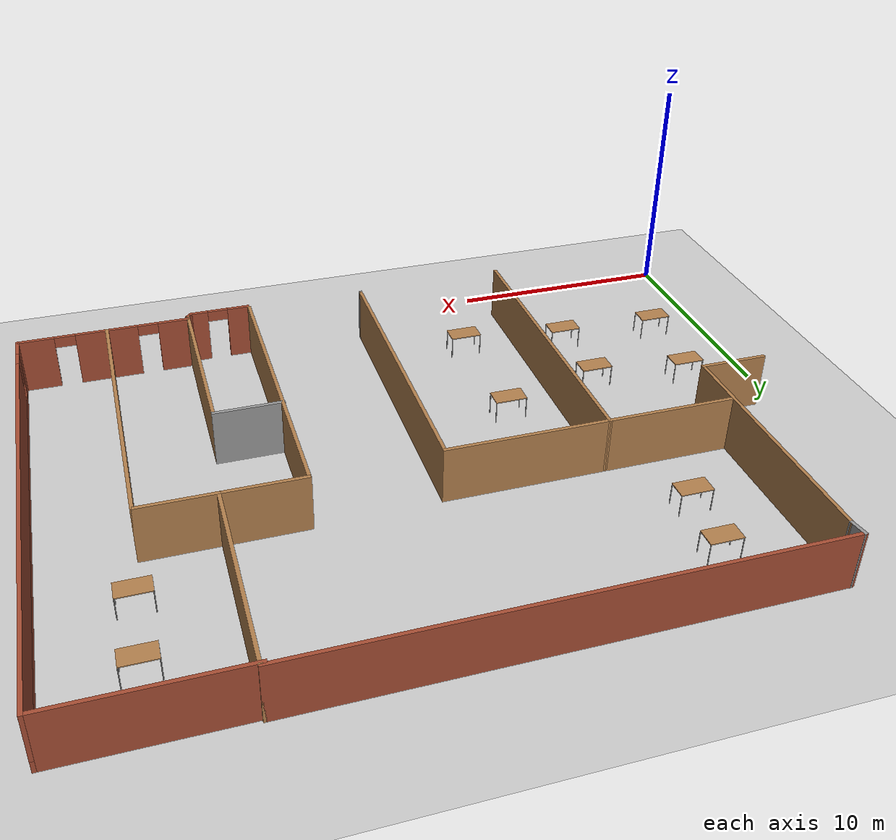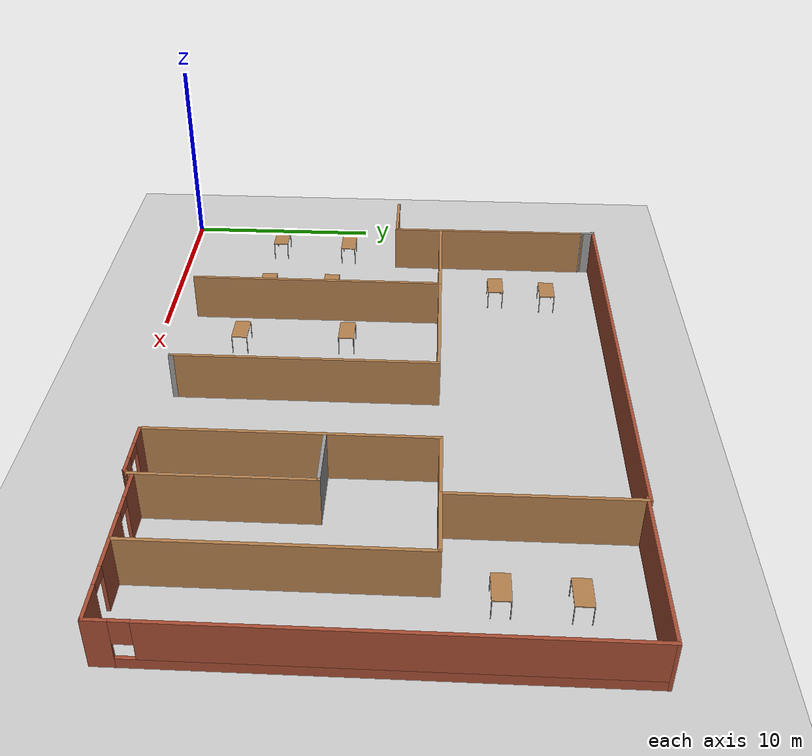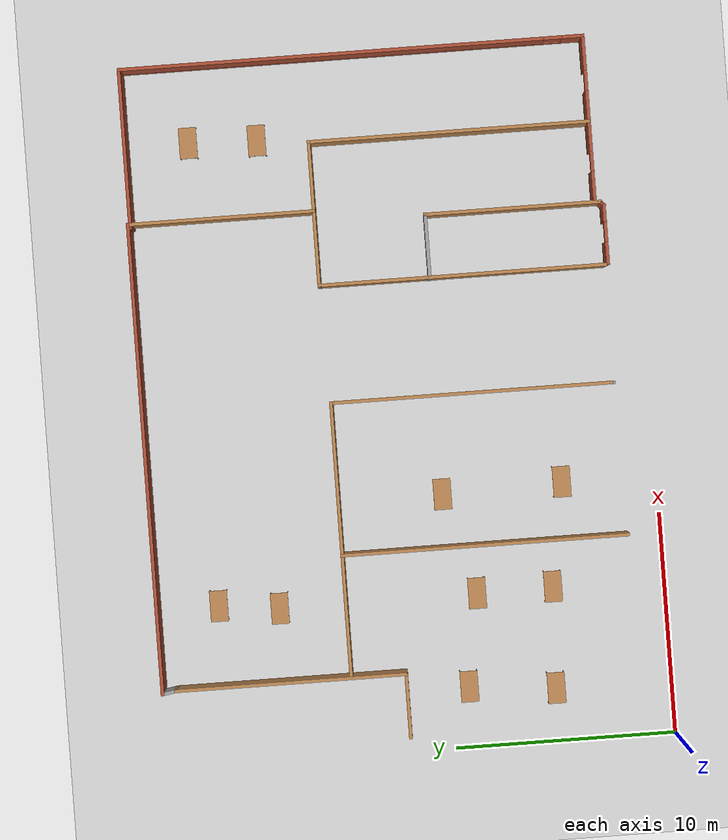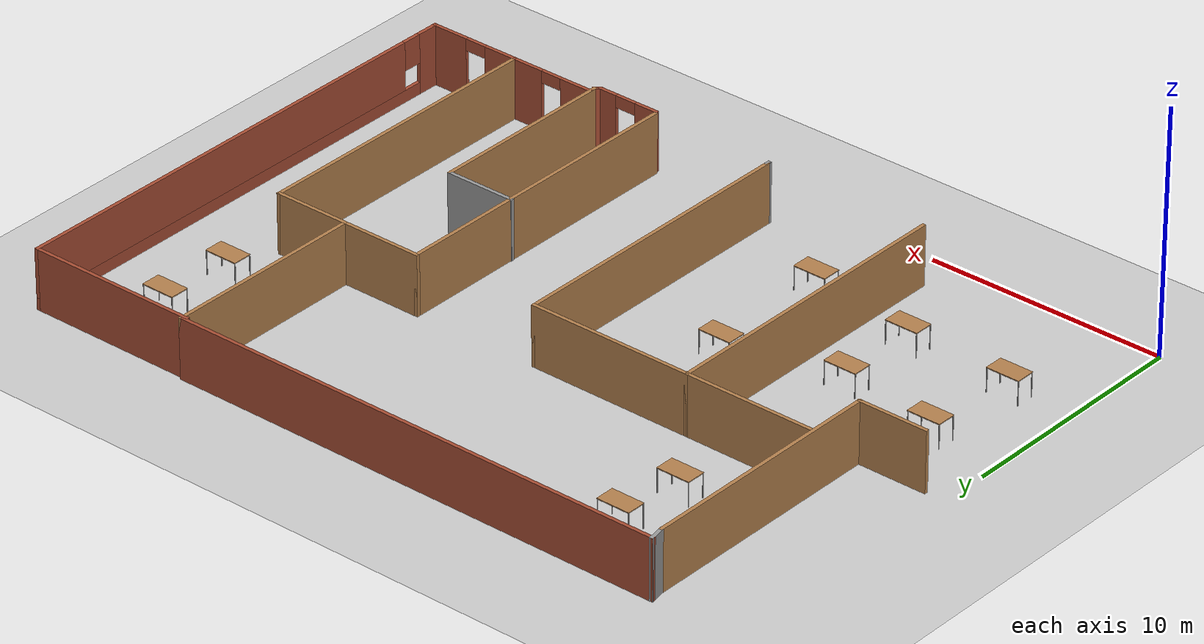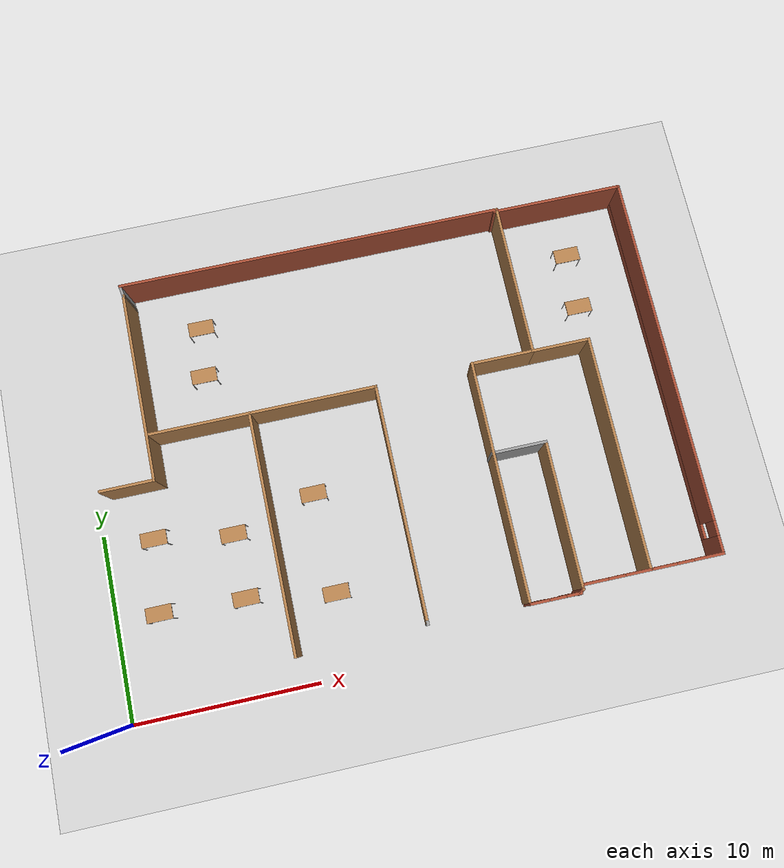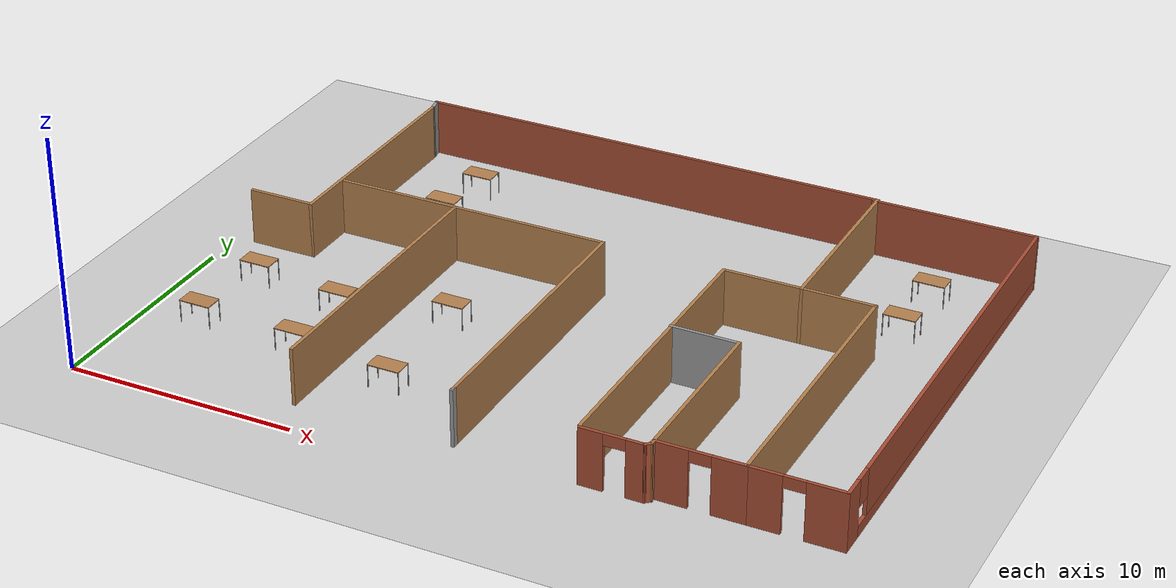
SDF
<sdf version="1.6">
 <world name="default">
  <model name="ground_plane">
   <static>1</static>
   <link name="link">
    <collision name="collision">
     <geometry><plane><normal>0 0 1</normal><size>100 100</size></plane></geometry>
     <surface><friction><ode><mu>100</mu><mu2>50</mu2></ode></friction></surface>
    </collision>
    <visual name="visual">
     <cast_shadows>0</cast_shadows>
     <geometry><plane><normal>0 0 1</normal><size>100 100</size></plane></geometry>
     <material>
      <script><uri>file://media/materials/scripts/gazebo.material</uri><name>Gazebo/Grey</name></script>
     </material>
    </visual>
   </link>
  </model>
  <model name="vital">
   <pose>1.2398 -2.19799 0 0 -0 0</pose>
   <link name="Wall_52">
    <collision name="Wall_52_Collision">
     <geometry><box><size>3 0.15 2.5</size></box></geometry>
     <pose>0 0 1.25 0 -0 0</pose>
    </collision>
    <visual name="Wall_52_Visual">
     <pose>0 0 1.25 0 -0 0</pose>
     <geometry><box><size>3 0.15 2.5</size></box></geometry>
     <material>
      <script><uri>file://media/materials/scripts/gazebo.material</uri><name>Gazebo/Wood</name></script>
      <ambient>1 1 1 1</ambient>
     </material>
    </visual>
    <pose>1.05578 14.218 0 0 -0 0</pose>
   </link>
   <link name="Wall_53">
    <collision name="Wall_53_Collision">
     <geometry><box><size>10.5 0.15 2.5</size></box></geometry>
     <pose>0 0 1.25 0 -0 0</pose>
    </collision>
    <visual name="Wall_53_Visual">
     <pose>0 0 1.25 0 -0 0</pose>
     <geometry><box><size>10.5 0.15 2.5</size></box></geometry>
     <material>
      <script><uri>file://media/materials/scripts/gazebo.material</uri><name>Gazebo/Wood</name></script>
      <ambient>1 1 1 1</ambient>
     </material>
    </visual>
    <pose>2.48078 19.393 0 0 -0 1.5708</pose>
   </link>
   <link name="Wall_62">
    <collision name="Wall_62_Collision">
     <geometry><box><size>0.758276 0.15 2.5</size></box></geometry>
     <pose>0 0 1.25 0 -0 0</pose>
    </collision>
    <visual name="Wall_62_Visual">
     <pose>0 0 1.25 0 -0 0</pose>
     <geometry><box><size>0.758276 0.15 2.5</size></box></geometry>
     <material>
      <script><uri>file://media/materials/scripts/gazebo.material</uri><name>Gazebo/Grey</name></script>
      <ambient>1 1 1 1</ambient>
     </material>
    </visual>
    <pose>2.43078 24.868 0 0 -0 1.73595</pose>
   </link>
   <link name="Wall_65">
    <collision name="Wall_65_Collision">
     <geometry><box><size>13 0.15 2.5</size></box></geometry>
     <pose>0 0 1.25 0 -0 0</pose>
    </collision>
    <visual name="Wall_65_Visual">
     <pose>0 0 1.25 0 -0 0</pose>
     <geometry><box><size>13 0.15 2.5</size></box></geometry>
     <material>
      <script><uri>file://media/materials/scripts/gazebo.material</uri><name>Gazebo/Wood</name></script>
      <ambient>1 1 1 1</ambient>
     </material>
    </visual>
    <pose>7.98601 10.2564 0 0 -0 1.5708</pose>
   </link>
   <link name="Wall_66">
    <collision name="Wall_66_Collision">
     <geometry><box><size>5.5 0.15 2.5</size></box></geometry>
     <pose>0 0 1.25 0 -0 0</pose>
    </collision>
    <visual name="Wall_66_Visual">
     <pose>0 0 1.25 0 -0 0</pose>
     <geometry><box><size>5.5 0.15 2.5</size></box></geometry>
     <material>
      <script><uri>file://media/materials/scripts/gazebo.material</uri><name>Gazebo/Wood</name></script>
      <ambient>1 1 1 1</ambient>
     </material>
    </visual>
    <pose>5.31101 16.6814 0 0 -0 3.14159</pose>
   </link>
   <link name="Wall_68">
    <collision name="Wall_68_Collision">
     <geometry><box><size>7 0.15 2.5</size></box></geometry>
     <pose>0 0 1.25 0 -0 0</pose>
    </collision>
    <visual name="Wall_68_Visual">
     <pose>0 0 1.25 0 -0 0</pose>
     <geometry><box><size>7 0.15 2.5</size></box></geometry>
     <material>
      <script><uri>file://media/materials/scripts/gazebo.material</uri><name>Gazebo/Wood</name></script>
      <ambient>1 1 1 1</ambient>
     </material>
    </visual>
    <pose>11.411 16.6814 0 0 -0 0</pose>
   </link>
   <link name="Wall_69">
    <collision name="Wall_69_Collision">
     <geometry><box><size>12.75 0.15 2.5</size></box></geometry>
     <pose>0 0 1.25 0 -0 0</pose>
    </collision>
    <visual name="Wall_69_Visual">
     <pose>0 0 1.25 0 -0 0</pose>
     <geometry><box><size>12.75 0.15 2.5</size></box></geometry>
     <material>
      <script><uri>file://media/materials/scripts/gazebo.material</uri><name>Gazebo/Wood</name></script>
      <ambient>1 1 1 1</ambient>
     </material>
    </visual>
    <pose>14.836 10.3814 0 0 0 -1.5708</pose>
   </link>
   <link name="Wall_70">
    <collision name="Wall_70_Collision">
     <geometry><box><size>0.25 0.15 2.5</size></box></geometry>
     <pose>0 0 1.25 0 -0 0</pose>
    </collision>
    <visual name="Wall_70_Visual">
     <pose>0 0 1.25 0 -0 0</pose>
     <geometry><box><size>0.25 0.15 2.5</size></box></geometry>
     <material>
      <script><uri>file://media/materials/scripts/gazebo.material</uri><name>Gazebo/Grey</name></script>
      <ambient>1 1 1 1</ambient>
     </material>
    </visual>
    <pose>14.836 4.03144 0 0 0 -1.5708</pose>
   </link>
   <link name="Wall_75">
    <collision name="Wall_75_Collision">
     <geometry><box><size>21.25 0.15 2.5</size></box></geometry>
     <pose>0 0 1.25 0 -0 0</pose>
    </collision>
    <visual name="Wall_75_Visual">
     <pose>0 0 1.25 0 -0 0</pose>
     <geometry><box><size>21.25 0.15 2.5</size></box></geometry>
     <material>
      <script><uri>file://media/materials/scripts/gazebo.material</uri><name>Gazebo/Bricks</name></script>
      <ambient>1 1 1 1</ambient>
     </material>
    </visual>
    <pose>12.9308 25.168 0 0 -0 0</pose>
   </link>
   <link name="Wall_76">
    <collision name="Wall_76_Collision">
     <geometry><box><size>8.5 0.15 2.5</size></box></geometry>
     <pose>0 0 1.25 0 -0 0</pose>
    </collision>
    <visual name="Wall_76_Visual">
     <pose>0 0 1.25 0 -0 0</pose>
     <geometry><box><size>8.5 0.15 2.5</size></box></geometry>
     <material>
      <script><uri>file://media/materials/scripts/gazebo.material</uri><name>Gazebo/Wood</name></script>
      <ambient>1 1 1 1</ambient>
     </material>
    </visual>
    <pose>23.4808 20.993 0 0 0 -1.5708</pose>
   </link>
   <link name="Wall_77">
    <collision name="Wall_77_Collision">
     <geometry><box><size>3.5 0.15 2.5</size></box></geometry>
     <pose>0 0 1.25 0 -0 0</pose>
    </collision>
    <visual name="Wall_77_Visual">
     <pose>0 0 1.25 0 -0 0</pose>
     <geometry><box><size>3.5 0.15 2.5</size></box></geometry>
     <material>
      <script><uri>file://media/materials/scripts/gazebo.material</uri><name>Gazebo/Wood</name></script>
      <ambient>1 1 1 1</ambient>
     </material>
    </visual>
    <pose>21.8058 16.818 0 0 -0 3.14159</pose>
   </link>
   <link name="Wall_78">
    <collision name="Wall_78_Collision">
     <geometry><box><size>13 0.15 2.5</size></box></geometry>
     <pose>0 0 1.25 0 -0 0</pose>
    </collision>
    <visual name="Wall_78_Visual">
     <pose>0 0 1.25 0 -0 0</pose>
     <geometry><box><size>13 0.15 2.5</size></box></geometry>
     <material>
      <script><uri>file://media/materials/scripts/gazebo.material</uri><name>Gazebo/Wood</name></script>
      <ambient>1 1 1 1</ambient>
     </material>
    </visual>
    <pose>20.1308 10.393 0 0 0 -1.5708</pose>
   </link>
   <link name="Wall_83">
    <collision name="Wall_83_Collision">
     <geometry><box><size>3 0.15 2.5</size></box></geometry>
     <pose>0 0 1.25 0 -0 0</pose>
    </collision>
    <visual name="Wall_83_Visual">
     <pose>0 0 1.25 0 -0 0</pose>
     <geometry><box><size>3 0.15 2.5</size></box></geometry>
     <material>
      <script><uri>file://media/materials/scripts/gazebo.material</uri><name>Gazebo/Grey</name></script>
      <ambient>1 1 1 1</ambient>
     </material>
    </visual>
    <pose>21.5302 11.8466 0 0 -0 0</pose>
   </link>
   <link name="Wall_84">
    <collision name="Wall_84_Collision">
     <geometry><box><size>8 0.15 2.5</size></box></geometry>
     <pose>0 0 1.25 0 -0 0</pose>
    </collision>
    <visual name="Wall_84_Visual">
     <pose>0 0 1.25 0 -0 0</pose>
     <geometry><box><size>8 0.15 2.5</size></box></geometry>
     <material>
      <script><uri>file://media/materials/scripts/gazebo.material</uri><name>Gazebo/Wood</name></script>
      <ambient>1 1 1 1</ambient>
     </material>
    </visual>
    <pose>22.9552 7.92155 0 0 0 -1.5708</pose>
   </link>
   <link name="Wall_87">
    <pose>21.486 3.83144 0 0 -0 0</pose>
    <visual name="Wall_87_Visual_0">
     <pose>-0.861452 0 1.25 0 -0 0</pose>
     <geometry><box><size>1.0271 0.15 2.5</size></box></geometry>
     <material>
      <script><uri>file://media/materials/scripts/gazebo.material</uri><name>Gazebo/Bricks</name></script>
      <ambient>1 1 1 1</ambient>
     </material>
    </visual>
    <collision name="Wall_87_Collision_0">
     <geometry><box><size>1.0271 0.15 2.5</size></box></geometry>
     <pose>-0.861452 0 1.25 0 -0 0</pose>
    </collision>
    <visual name="Wall_87_Visual_1">
     <pose>0.963548 0 1.25 0 -0 0</pose>
     <geometry><box><size>0.822903 0.15 2.5</size></box></geometry>
     <material>
      <script><uri>file://media/materials/scripts/gazebo.material</uri><name>Gazebo/Bricks</name></script>
      <ambient>1 1 1 1</ambient>
     </material>
    </visual>
    <collision name="Wall_87_Collision_1">
     <geometry><box><size>0.822903 0.15 2.5</size></box></geometry>
     <pose>0.963548 0 1.25 0 -0 0</pose>
    </collision>
    <visual name="Wall_87_Visual_2">
     <pose>0.102097 0 2.25 0 -0 0</pose>
     <geometry><box><size>0.9 0.15 0.5</size></box></geometry>
     <material>
      <script><uri>file://media/materials/scripts/gazebo.material</uri><name>Gazebo/Bricks</name></script>
      <ambient>1 1 1 1</ambient>
     </material>
    </visual>
    <collision name="Wall_87_Collision_2">
     <geometry><box><size>0.9 0.15 0.5</size></box></geometry>
     <pose>0.102097 0 2.25 0 -0 0</pose>
    </collision>
   </link>
   <link name="Wall_88">
    <collision name="Wall_88_Collision">
     <geometry><box><size>0.38642 0.15 2.5</size></box></geometry>
     <pose>0 0 1.25 0 -0 0</pose>
    </collision>
    <visual name="Wall_88_Visual">
     <pose>0 0 1.25 0 -0 0</pose>
     <geometry><box><size>0.38642 0.15 2.5</size></box></geometry>
     <material>
      <script><uri>file://media/materials/scripts/gazebo.material</uri><name>Gazebo/Bricks</name></script>
      <ambient>1 1 1 1</ambient>
     </material>
    </visual>
    <pose>22.8706 3.914 0 0 -0 0.773112</pose>
   </link>
   <link name="Wall_90">
    <collision name="Wall_90_Collision">
     <geometry><box><size>3.25 0.15 2.5</size></box></geometry>
     <pose>0 0 1.25 0 -0 0</pose>
    </collision>
    <visual name="Wall_90_Visual">
     <pose>0 0 1.25 0 -0 0</pose>
     <geometry><box><size>3.25 0.15 2.5</size></box></geometry>
     <material>
      <script><uri>file://media/materials/scripts/gazebo.material</uri><name>Gazebo/Wood</name></script>
      <ambient>1 1 1 1</ambient>
     </material>
    </visual>
    <pose>25.0308 16.818 0 0 -0 0</pose>
   </link>
   <link name="Wall_91">
    <collision name="Wall_91_Collision">
     <geometry><box><size>12.75 0.15 2.5</size></box></geometry>
     <pose>0 0 1.25 0 -0 0</pose>
    </collision>
    <visual name="Wall_91_Visual">
     <pose>0 0 1.25 0 -0 0</pose>
     <geometry><box><size>12.75 0.15 2.5</size></box></geometry>
     <material>
      <script><uri>file://media/materials/scripts/gazebo.material</uri><name>Gazebo/Wood</name></script>
      <ambient>1 1 1 1</ambient>
     </material>
    </visual>
    <pose>26.5808 10.518 0 0 0 -1.5708</pose>
   </link>
   <link name="Wall_92">
    <pose>24.7808 4.21796 0 0 -0 3.14159</pose>
    <visual name="Wall_92_Visual_0">
     <pose>-1.16589 0 1.25 0 -0 0</pose>
     <geometry><box><size>1.41822 0.15 2.5</size></box></geometry>
     <material>
      <script><uri>file://media/materials/scripts/gazebo.material</uri><name>Gazebo/Bricks</name></script>
      <ambient>1 1 1 1</ambient>
     </material>
    </visual>
    <collision name="Wall_92_Collision_0">
     <geometry><box><size>1.41822 0.15 2.5</size></box></geometry>
     <pose>-1.16589 0 1.25 0 -0 0</pose>
    </collision>
    <visual name="Wall_92_Visual_1">
     <pose>1.15911 0 1.25 0 -0 0</pose>
     <geometry><box><size>1.43178 0.15 2.5</size></box></geometry>
     <material>
      <script><uri>file://media/materials/scripts/gazebo.material</uri><name>Gazebo/Bricks</name></script>
      <ambient>1 1 1 1</ambient>
     </material>
    </visual>
    <collision name="Wall_92_Collision_1">
     <geometry><box><size>1.43178 0.15 2.5</size></box></geometry>
     <pose>1.15911 0 1.25 0 -0 0</pose>
    </collision>
    <visual name="Wall_92_Visual_2">
     <pose>-0.006779 0 2.25 0 -0 0</pose>
     <geometry><box><size>0.9 0.15 0.5</size></box></geometry>
     <material>
      <script><uri>file://media/materials/scripts/gazebo.material</uri><name>Gazebo/Bricks</name></script>
      <ambient>1 1 1 1</ambient>
     </material>
    </visual>
    <collision name="Wall_92_Collision_2">
     <geometry><box><size>0.9 0.15 0.5</size></box></geometry>
     <pose>-0.006779 0 2.25 0 -0 0</pose>
    </collision>
   </link>
   <link name="Wall_94">
    <pose>28.5058 4.21796 0 0 -0 0</pose>
    <visual name="Wall_94_Visual_0">
     <pose>-1.26904 0 1.25 0 -0 0</pose>
     <geometry><box><size>1.46192 0.15 2.5</size></box></geometry>
     <material>
      <script><uri>file://media/materials/scripts/gazebo.material</uri><name>Gazebo/Bricks</name></script>
      <ambient>1 1 1 1</ambient>
     </material>
    </visual>
    <collision name="Wall_94_Collision_0">
     <geometry><box><size>1.46192 0.15 2.5</size></box></geometry>
     <pose>-1.26904 0 1.25 0 -0 0</pose>
    </collision>
    <visual name="Wall_94_Visual_1">
     <pose>1.18096 0 1.25 0 -0 0</pose>
     <geometry><box><size>1.63808 0.15 2.5</size></box></geometry>
     <material>
      <script><uri>file://media/materials/scripts/gazebo.material</uri><name>Gazebo/Bricks</name></script>
      <ambient>1 1 1 1</ambient>
     </material>
    </visual>
    <collision name="Wall_94_Collision_1">
     <geometry><box><size>1.63808 0.15 2.5</size></box></geometry>
     <pose>1.18096 0 1.25 0 -0 0</pose>
    </collision>
    <visual name="Wall_94_Visual_2">
     <pose>-0.088078 0 2.25 0 -0 0</pose>
     <geometry><box><size>0.9 0.15 0.5</size></box></geometry>
     <material>
      <script><uri>file://media/materials/scripts/gazebo.material</uri><name>Gazebo/Bricks</name></script>
      <ambient>1 1 1 1</ambient>
     </material>
    </visual>
    <collision name="Wall_94_Collision_2">
     <geometry><box><size>0.9 0.15 0.5</size></box></geometry>
     <pose>-0.088078 0 2.25 0 -0 0</pose>
    </collision>
   </link>
   <link name="Wall_95">
    <pose>30.4308 14.643 0 0 -0 1.5708</pose>
    <visual name="Wall_95_Visual_0">
     <pose>-9.99323 0 1.25 0 -0 0</pose>
     <geometry><box><size>1.01353 0.15 2.5</size></box></geometry>
     <material>
      <script><uri>file://media/materials/scripts/gazebo.material</uri><name>Gazebo/Bricks</name></script>
      <ambient>1 1 1 1</ambient>
     </material>
    </visual>
    <collision name="Wall_95_Collision_0">
     <geometry><box><size>1.01353 0.15 2.5</size></box></geometry>
     <pose>-9.99323 0 1.25 0 -0 0</pose>
    </collision>
    <visual name="Wall_95_Visual_1">
     <pose>0.506766 0 0.25 0 -0 0</pose>
     <geometry><box><size>19.9865 0.15 0.5</size></box></geometry>
     <material>
      <script><uri>file://media/materials/scripts/gazebo.material</uri><name>Gazebo/Bricks</name></script>
      <ambient>1 1 1 1</ambient>
     </material>
    </visual>
    <collision name="Wall_95_Collision_1">
     <geometry><box><size>19.9865 0.15 0.5</size></box></geometry>
     <pose>0.506766 0 0.25 0 -0 0</pose>
    </collision>
    <visual name="Wall_95_Visual_2">
     <pose>0.906766 0 1.5 0 -0 0</pose>
     <geometry><box><size>19.1865 0.15 2</size></box></geometry>
     <material>
      <script><uri>file://media/materials/scripts/gazebo.material</uri><name>Gazebo/Bricks</name></script>
      <ambient>1 1 1 1</ambient>
     </material>
    </visual>
    <collision name="Wall_95_Collision_2">
     <geometry><box><size>19.1865 0.15 2</size></box></geometry>
     <pose>0.906766 0 1.5 0 -0 0</pose>
    </collision>
    <visual name="Wall_95_Visual_3">
     <pose>-9.08647 0 1.9 0 -0 0</pose>
     <geometry><box><size>0.8 0.15 1.2</size></box></geometry>
     <material>
      <script><uri>file://media/materials/scripts/gazebo.material</uri><name>Gazebo/Bricks</name></script>
      <ambient>1 1 1 1</ambient>
     </material>
    </visual>
    <collision name="Wall_95_Collision_3">
     <geometry><box><size>0.8 0.15 1.2</size></box></geometry>
     <pose>-9.08647 0 1.9 0 -0 0</pose>
    </collision>
   </link>
   <link name="Wall_96">
    <collision name="Wall_96_Collision">
     <geometry><box><size>7.25 0.15 2.5</size></box></geometry>
     <pose>0 0 1.25 0 -0 0</pose>
    </collision>
    <visual name="Wall_96_Visual">
     <pose>0 0 1.25 0 -0 0</pose>
     <geometry><box><size>7.25 0.15 2.5</size></box></geometry>
     <material>
      <script><uri>file://media/materials/scripts/gazebo.material</uri><name>Gazebo/Bricks</name></script>
      <ambient>1 1 1 1</ambient>
     </material>
    </visual>
    <pose>26.8808 25.068 0 0 -0 3.14159</pose>
   </link>
   <static>1</static>
  </model>
  <model name="table_5">
   <static>0</static>
   <link name="link">
    <collision name="surface">
     <pose>0 0 1 0 -0 0</pose>
     <geometry><box><size>1.5 0.8 0.03</size></box></geometry>
     <surface><friction><ode><mu>0.6</mu><mu2>0.6</mu2></ode></friction></surface>
    </collision>
    <visual name="visual1">
     <pose>0 0 1 0 -0 0</pose>
     <geometry><box><size>1.4 0.8 0.04</size></box></geometry>
     <material>
      <script><uri>file://media/materials/scripts/gazebo.material</uri><name>Gazebo/Wood</name></script>
     </material>
    </visual>
    <collision name="front_left_leg">
     <pose>0.68 0.38 0.5 0 -0 0</pose>
     <geometry><cylinder><radius>0.02</radius><length>1</length></cylinder></geometry>
    </collision>
    <visual name="front_left_leg">
     <pose>0.68 0.38 0.5 0 -0 0</pose>
     <geometry><cylinder><radius>0.02</radius><length>1</length></cylinder></geometry>
     <material>
      <script><uri>file://media/materials/scripts/gazebo.material</uri><name>Gazebo/Grey</name></script>
     </material>
    </visual>
    <collision name="front_right_leg">
     <pose>0.68 -0.38 0.5 0 -0 0</pose>
     <geometry><cylinder><radius>0.02</radius><length>1</length></cylinder></geometry>
    </collision>
    <visual name="front_right_leg">
     <pose>0.68 -0.38 0.5 0 -0 0</pose>
     <geometry><cylinder><radius>0.02</radius><length>1</length></cylinder></geometry>
     <material>
      <script><uri>file://media/materials/scripts/gazebo.material</uri><name>Gazebo/Grey</name></script>
     </material>
    </visual>
    <collision name="back_right_leg">
     <pose>-0.68 -0.38 0.5 0 -0 0</pose>
     <geometry><cylinder><radius>0.02</radius><length>1</length></cylinder></geometry>
    </collision>
    <visual name="back_right_leg">
     <pose>-0.68 -0.38 0.5 0 -0 0</pose>
     <geometry><cylinder><radius>0.02</radius><length>1</length></cylinder></geometry>
     <material>
      <script><uri>file://media/materials/scripts/gazebo.material</uri><name>Gazebo/Grey</name></script>
     </material>
    </visual>
    <collision name="back_left_leg">
     <pose>-0.68 0.38 0.5 0 -0 0</pose>
     <geometry><cylinder><radius>0.02</radius><length>1</length></cylinder></geometry>
    </collision>
    <visual name="back_left_leg">
     <pose>-0.68 0.38 0.5 0 -0 0</pose>
     <geometry><cylinder><radius>0.02</radius><length>1</length></cylinder></geometry>
     <material>
      <script><uri>file://media/materials/scripts/gazebo.material</uri><name>Gazebo/Grey</name></script>
     </material>
    </visual>
    <inertial>
     <inertia><ixx>1</ixx><ixy>0</ixy><ixz>0</ixz><iyy>1</iyy><iyz>0</iyz><izz>1</izz></inertia>
     <mass>1</mass>
    </inertial>
   </link>
   <pose>2.49857 5.30082 -1e-06 1e-06 -0 0</pose>
  </model>
  <model name="table_6">
   <static>0</static>
   <link name="link">
    <collision name="surface">
     <pose>0 0 1 0 -0 0</pose>
     <geometry><box><size>1.5 0.8 0.03</size></box></geometry>
     <surface><friction><ode><mu>0.6</mu><mu2>0.6</mu2></ode></friction></surface>
    </collision>
    <visual name="visual1">
     <pose>0 0 1 0 -0 0</pose>
     <geometry><box><size>1.4 0.8 0.04</size></box></geometry>
     <material>
      <script><uri>file://media/materials/scripts/gazebo.material</uri><name>Gazebo/Wood</name></script>
     </material>
    </visual>
    <collision name="front_left_leg">
     <pose>0.68 0.38 0.5 0 -0 0</pose>
     <geometry><cylinder><radius>0.02</radius><length>1</length></cylinder></geometry>
    </collision>
    <visual name="front_left_leg">
     <pose>0.68 0.38 0.5 0 -0 0</pose>
     <geometry><cylinder><radius>0.02</radius><length>1</length></cylinder></geometry>
     <material>
      <script><uri>file://media/materials/scripts/gazebo.material</uri><name>Gazebo/Grey</name></script>
     </material>
    </visual>
    <collision name="front_right_leg">
     <pose>0.68 -0.38 0.5 0 -0 0</pose>
     <geometry><cylinder><radius>0.02</radius><length>1</length></cylinder></geometry>
    </collision>
    <visual name="front_right_leg">
     <pose>0.68 -0.38 0.5 0 -0 0</pose>
     <geometry><cylinder><radius>0.02</radius><length>1</length></cylinder></geometry>
     <material>
      <script><uri>file://media/materials/scripts/gazebo.material</uri><name>Gazebo/Grey</name></script>
     </material>
    </visual>
    <collision name="back_right_leg">
     <pose>-0.68 -0.38 0.5 0 -0 0</pose>
     <geometry><cylinder><radius>0.02</radius><length>1</length></cylinder></geometry>
    </collision>
    <visual name="back_right_leg">
     <pose>-0.68 -0.38 0.5 0 -0 0</pose>
     <geometry><cylinder><radius>0.02</radius><length>1</length></cylinder></geometry>
     <material>
      <script><uri>file://media/materials/scripts/gazebo.material</uri><name>Gazebo/Grey</name></script>
     </material>
    </visual>
    <collision name="back_left_leg">
     <pose>-0.68 0.38 0.5 0 -0 0</pose>
     <geometry><cylinder><radius>0.02</radius><length>1</length></cylinder></geometry>
    </collision>
    <visual name="back_left_leg">
     <pose>-0.68 0.38 0.5 0 -0 0</pose>
     <geometry><cylinder><radius>0.02</radius><length>1</length></cylinder></geometry>
     <material>
      <script><uri>file://media/materials/scripts/gazebo.material</uri><name>Gazebo/Grey</name></script>
     </material>
    </visual>
    <inertial>
     <inertia><ixx>1</ixx><ixy>0</ixy><ixz>0</ixz><iyy>1</iyy><iyz>0</iyz><izz>1</izz></inertia>
     <mass>1</mass>
    </inertial>
   </link>
   <pose>2.84704 9.21703 -1e-06 1e-06 -0 0</pose>
  </model>
  <model name="table_7">
   <static>0</static>
   <link name="link">
    <collision name="surface">
     <pose>0 0 1 0 -0 0</pose>
     <geometry><box><size>1.5 0.8 0.03</size></box></geometry>
     <surface><friction><ode><mu>0.6</mu><mu2>0.6</mu2></ode></friction></surface>
    </collision>
    <visual name="visual1">
     <pose>0 0 1 0 -0 0</pose>
     <geometry><box><size>1.4 0.8 0.04</size></box></geometry>
     <material>
      <script><uri>file://media/materials/scripts/gazebo.material</uri><name>Gazebo/Wood</name></script>
     </material>
    </visual>
    <collision name="front_left_leg">
     <pose>0.68 0.38 0.5 0 -0 0</pose>
     <geometry><cylinder><radius>0.02</radius><length>1</length></cylinder></geometry>
    </collision>
    <visual name="front_left_leg">
     <pose>0.68 0.38 0.5 0 -0 0</pose>
     <geometry><cylinder><radius>0.02</radius><length>1</length></cylinder></geometry>
     <material>
      <script><uri>file://media/materials/scripts/gazebo.material</uri><name>Gazebo/Grey</name></script>
     </material>
    </visual>
    <collision name="front_right_leg">
     <pose>0.68 -0.38 0.5 0 -0 0</pose>
     <geometry><cylinder><radius>0.02</radius><length>1</length></cylinder></geometry>
    </collision>
    <visual name="front_right_leg">
     <pose>0.68 -0.38 0.5 0 -0 0</pose>
     <geometry><cylinder><radius>0.02</radius><length>1</length></cylinder></geometry>
     <material>
      <script><uri>file://media/materials/scripts/gazebo.material</uri><name>Gazebo/Grey</name></script>
     </material>
    </visual>
    <collision name="back_right_leg">
     <pose>-0.68 -0.38 0.5 0 -0 0</pose>
     <geometry><cylinder><radius>0.02</radius><length>1</length></cylinder></geometry>
    </collision>
    <visual name="back_right_leg">
     <pose>-0.68 -0.38 0.5 0 -0 0</pose>
     <geometry><cylinder><radius>0.02</radius><length>1</length></cylinder></geometry>
     <material>
      <script><uri>file://media/materials/scripts/gazebo.material</uri><name>Gazebo/Grey</name></script>
     </material>
    </visual>
    <collision name="back_left_leg">
     <pose>-0.68 0.38 0.5 0 -0 0</pose>
     <geometry><cylinder><radius>0.02</radius><length>1</length></cylinder></geometry>
    </collision>
    <visual name="back_left_leg">
     <pose>-0.68 0.38 0.5 0 -0 0</pose>
     <geometry><cylinder><radius>0.02</radius><length>1</length></cylinder></geometry>
     <material>
      <script><uri>file://media/materials/scripts/gazebo.material</uri><name>Gazebo/Grey</name></script>
     </material>
    </visual>
    <inertial>
     <inertia><ixx>1</ixx><ixy>0</ixy><ixz>0</ixz><iyy>1</iyy><iyz>0</iyz><izz>1</izz></inertia>
     <mass>1</mass>
    </inertial>
   </link>
   <pose>7.07808 5.12069 -8e-06 2e-06 1e-06 0</pose>
  </model>
  <model name="table_8">
   <static>0</static>
   <link name="link">
    <collision name="surface">
     <pose>0 0 1 0 -0 0</pose>
     <geometry><box><size>1.5 0.8 0.03</size></box></geometry>
     <surface><friction><ode><mu>0.6</mu><mu2>0.6</mu2></ode></friction></surface>
    </collision>
    <visual name="visual1">
     <pose>0 0 1 0 -0 0</pose>
     <geometry><box><size>1.4 0.8 0.04</size></box></geometry>
     <material>
      <script><uri>file://media/materials/scripts/gazebo.material</uri><name>Gazebo/Wood</name></script>
     </material>
    </visual>
    <collision name="front_left_leg">
     <pose>0.68 0.38 0.5 0 -0 0</pose>
     <geometry><cylinder><radius>0.02</radius><length>1</length></cylinder></geometry>
    </collision>
    <visual name="front_left_leg">
     <pose>0.68 0.38 0.5 0 -0 0</pose>
     <geometry><cylinder><radius>0.02</radius><length>1</length></cylinder></geometry>
     <material>
      <script><uri>file://media/materials/scripts/gazebo.material</uri><name>Gazebo/Grey</name></script>
     </material>
    </visual>
    <collision name="front_right_leg">
     <pose>0.68 -0.38 0.5 0 -0 0</pose>
     <geometry><cylinder><radius>0.02</radius><length>1</length></cylinder></geometry>
    </collision>
    <visual name="front_right_leg">
     <pose>0.68 -0.38 0.5 0 -0 0</pose>
     <geometry><cylinder><radius>0.02</radius><length>1</length></cylinder></geometry>
     <material>
      <script><uri>file://media/materials/scripts/gazebo.material</uri><name>Gazebo/Grey</name></script>
     </material>
    </visual>
    <collision name="back_right_leg">
     <pose>-0.68 -0.38 0.5 0 -0 0</pose>
     <geometry><cylinder><radius>0.02</radius><length>1</length></cylinder></geometry>
    </collision>
    <visual name="back_right_leg">
     <pose>-0.68 -0.38 0.5 0 -0 0</pose>
     <geometry><cylinder><radius>0.02</radius><length>1</length></cylinder></geometry>
     <material>
      <script><uri>file://media/materials/scripts/gazebo.material</uri><name>Gazebo/Grey</name></script>
     </material>
    </visual>
    <collision name="back_left_leg">
     <pose>-0.68 0.38 0.5 0 -0 0</pose>
     <geometry><cylinder><radius>0.02</radius><length>1</length></cylinder></geometry>
    </collision>
    <visual name="back_left_leg">
     <pose>-0.68 0.38 0.5 0 -0 0</pose>
     <geometry><cylinder><radius>0.02</radius><length>1</length></cylinder></geometry>
     <material>
      <script><uri>file://media/materials/scripts/gazebo.material</uri><name>Gazebo/Grey</name></script>
     </material>
    </visual>
    <inertial>
     <inertia><ixx>1</ixx><ixy>0</ixy><ixz>0</ixz><iyy>1</iyy><iyz>0</iyz><izz>1</izz></inertia>
     <mass>1</mass>
    </inertial>
   </link>
   <pose>7.02876 8.55938 -1e-06 1e-06 -0 0</pose>
  </model>
  <model name="table_9">
   <static>0</static>
   <link name="link">
    <collision name="surface">
     <pose>0 0 1 0 -0 0</pose>
     <geometry><box><size>1.5 0.8 0.03</size></box></geometry>
     <surface><friction><ode><mu>0.6</mu><mu2>0.6</mu2></ode></friction></surface>
    </collision>
    <visual name="visual1">
     <pose>0 0 1 0 -0 0</pose>
     <geometry><box><size>1.4 0.8 0.04</size></box></geometry>
     <material>
      <script><uri>file://media/materials/scripts/gazebo.material</uri><name>Gazebo/Wood</name></script>
     </material>
    </visual>
    <collision name="front_left_leg">
     <pose>0.68 0.38 0.5 0 -0 0</pose>
     <geometry><cylinder><radius>0.02</radius><length>1</length></cylinder></geometry>
    </collision>
    <visual name="front_left_leg">
     <pose>0.68 0.38 0.5 0 -0 0</pose>
     <geometry><cylinder><radius>0.02</radius><length>1</length></cylinder></geometry>
     <material>
      <script><uri>file://media/materials/scripts/gazebo.material</uri><name>Gazebo/Grey</name></script>
     </material>
    </visual>
    <collision name="front_right_leg">
     <pose>0.68 -0.38 0.5 0 -0 0</pose>
     <geometry><cylinder><radius>0.02</radius><length>1</length></cylinder></geometry>
    </collision>
    <visual name="front_right_leg">
     <pose>0.68 -0.38 0.5 0 -0 0</pose>
     <geometry><cylinder><radius>0.02</radius><length>1</length></cylinder></geometry>
     <material>
      <script><uri>file://media/materials/scripts/gazebo.material</uri><name>Gazebo/Grey</name></script>
     </material>
    </visual>
    <collision name="back_right_leg">
     <pose>-0.68 -0.38 0.5 0 -0 0</pose>
     <geometry><cylinder><radius>0.02</radius><length>1</length></cylinder></geometry>
    </collision>
    <visual name="back_right_leg">
     <pose>-0.68 -0.38 0.5 0 -0 0</pose>
     <geometry><cylinder><radius>0.02</radius><length>1</length></cylinder></geometry>
     <material>
      <script><uri>file://media/materials/scripts/gazebo.material</uri><name>Gazebo/Grey</name></script>
     </material>
    </visual>
    <collision name="back_left_leg">
     <pose>-0.68 0.38 0.5 0 -0 0</pose>
     <geometry><cylinder><radius>0.02</radius><length>1</length></cylinder></geometry>
    </collision>
    <visual name="back_left_leg">
     <pose>-0.68 0.38 0.5 0 -0 0</pose>
     <geometry><cylinder><radius>0.02</radius><length>1</length></cylinder></geometry>
     <material>
      <script><uri>file://media/materials/scripts/gazebo.material</uri><name>Gazebo/Grey</name></script>
     </material>
    </visual>
    <inertial>
     <inertia><ixx>1</ixx><ixy>0</ixy><ixz>0</ixz><iyy>1</iyy><iyz>0</iyz><izz>1</izz></inertia>
     <mass>1</mass>
    </inertial>
   </link>
   <pose>11.7706 4.38058 -1e-06 1e-06 -0 0</pose>
  </model>
  <model name="table_10">
   <static>0</static>
   <link name="link">
    <collision name="surface">
     <pose>0 0 1 0 -0 0</pose>
     <geometry><box><size>1.5 0.8 0.03</size></box></geometry>
     <surface><friction><ode><mu>0.6</mu><mu2>0.6</mu2></ode></friction></surface>
    </collision>
    <visual name="visual1">
     <pose>0 0 1 0 -0 0</pose>
     <geometry><box><size>1.4 0.8 0.04</size></box></geometry>
     <material>
      <script><uri>file://media/materials/scripts/gazebo.material</uri><name>Gazebo/Wood</name></script>
     </material>
    </visual>
    <collision name="front_left_leg">
     <pose>0.68 0.38 0.5 0 -0 0</pose>
     <geometry><cylinder><radius>0.02</radius><length>1</length></cylinder></geometry>
    </collision>
    <visual name="front_left_leg">
     <pose>0.68 0.38 0.5 0 -0 0</pose>
     <geometry><cylinder><radius>0.02</radius><length>1</length></cylinder></geometry>
     <material>
      <script><uri>file://media/materials/scripts/gazebo.material</uri><name>Gazebo/Grey</name></script>
     </material>
    </visual>
    <collision name="front_right_leg">
     <pose>0.68 -0.38 0.5 0 -0 0</pose>
     <geometry><cylinder><radius>0.02</radius><length>1</length></cylinder></geometry>
    </collision>
    <visual name="front_right_leg">
     <pose>0.68 -0.38 0.5 0 -0 0</pose>
     <geometry><cylinder><radius>0.02</radius><length>1</length></cylinder></geometry>
     <material>
      <script><uri>file://media/materials/scripts/gazebo.material</uri><name>Gazebo/Grey</name></script>
     </material>
    </visual>
    <collision name="back_right_leg">
     <pose>-0.68 -0.38 0.5 0 -0 0</pose>
     <geometry><cylinder><radius>0.02</radius><length>1</length></cylinder></geometry>
    </collision>
    <visual name="back_right_leg">
     <pose>-0.68 -0.38 0.5 0 -0 0</pose>
     <geometry><cylinder><radius>0.02</radius><length>1</length></cylinder></geometry>
     <material>
      <script><uri>file://media/materials/scripts/gazebo.material</uri><name>Gazebo/Grey</name></script>
     </material>
    </visual>
    <collision name="back_left_leg">
     <pose>-0.68 0.38 0.5 0 -0 0</pose>
     <geometry><cylinder><radius>0.02</radius><length>1</length></cylinder></geometry>
    </collision>
    <visual name="back_left_leg">
     <pose>-0.68 0.38 0.5 0 -0 0</pose>
     <geometry><cylinder><radius>0.02</radius><length>1</length></cylinder></geometry>
     <material>
      <script><uri>file://media/materials/scripts/gazebo.material</uri><name>Gazebo/Grey</name></script>
     </material>
    </visual>
    <inertial>
     <inertia><ixx>1</ixx><ixy>0</ixy><ixz>0</ixz><iyy>1</iyy><iyz>0</iyz><izz>1</izz></inertia>
     <mass>1</mass>
    </inertial>
   </link>
   <pose>11.6041 9.7933 -9e-06 -1e-06 0 0</pose>
  </model>
  <model name="table_11">
   <static>0</static>
   <link name="link">
    <collision name="surface">
     <pose>0 0 1 0 -0 0</pose>
     <geometry><box><size>1.5 0.8 0.03</size></box></geometry>
     <surface><friction><ode><mu>0.6</mu><mu2>0.6</mu2></ode></friction></surface>
    </collision>
    <visual name="visual1">
     <pose>0 0 1 0 -0 0</pose>
     <geometry><box><size>1.4 0.8 0.04</size></box></geometry>
     <material>
      <script><uri>file://media/materials/scripts/gazebo.material</uri><name>Gazebo/Wood</name></script>
     </material>
    </visual>
    <collision name="front_left_leg">
     <pose>0.68 0.38 0.5 0 -0 0</pose>
     <geometry><cylinder><radius>0.02</radius><length>1</length></cylinder></geometry>
    </collision>
    <visual name="front_left_leg">
     <pose>0.68 0.38 0.5 0 -0 0</pose>
     <geometry><cylinder><radius>0.02</radius><length>1</length></cylinder></geometry>
     <material>
      <script><uri>file://media/materials/scripts/gazebo.material</uri><name>Gazebo/Grey</name></script>
     </material>
    </visual>
    <collision name="front_right_leg">
     <pose>0.68 -0.38 0.5 0 -0 0</pose>
     <geometry><cylinder><radius>0.02</radius><length>1</length></cylinder></geometry>
    </collision>
    <visual name="front_right_leg">
     <pose>0.68 -0.38 0.5 0 -0 0</pose>
     <geometry><cylinder><radius>0.02</radius><length>1</length></cylinder></geometry>
     <material>
      <script><uri>file://media/materials/scripts/gazebo.material</uri><name>Gazebo/Grey</name></script>
     </material>
    </visual>
    <collision name="back_right_leg">
     <pose>-0.68 -0.38 0.5 0 -0 0</pose>
     <geometry><cylinder><radius>0.02</radius><length>1</length></cylinder></geometry>
    </collision>
    <visual name="back_right_leg">
     <pose>-0.68 -0.38 0.5 0 -0 0</pose>
     <geometry><cylinder><radius>0.02</radius><length>1</length></cylinder></geometry>
     <material>
      <script><uri>file://media/materials/scripts/gazebo.material</uri><name>Gazebo/Grey</name></script>
     </material>
    </visual>
    <collision name="back_left_leg">
     <pose>-0.68 0.38 0.5 0 -0 0</pose>
     <geometry><cylinder><radius>0.02</radius><length>1</length></cylinder></geometry>
    </collision>
    <visual name="back_left_leg">
     <pose>-0.68 0.38 0.5 0 -0 0</pose>
     <geometry><cylinder><radius>0.02</radius><length>1</length></cylinder></geometry>
     <material>
      <script><uri>file://media/materials/scripts/gazebo.material</uri><name>Gazebo/Grey</name></script>
     </material>
    </visual>
    <inertial>
     <inertia><ixx>1</ixx><ixy>0</ixy><ixz>0</ixz><iyy>1</iyy><iyz>0</iyz><izz>1</izz></inertia>
     <mass>1</mass>
    </inertial>
   </link>
   <pose>6.99699 17.496 -9e-06 -1e-06 0 0</pose>
  </model>
  <model name="table_12">
   <static>0</static>
   <link name="link">
    <collision name="surface">
     <pose>0 0 1 0 -0 0</pose>
     <geometry><box><size>1.5 0.8 0.03</size></box></geometry>
     <surface><friction><ode><mu>0.6</mu><mu2>0.6</mu2></ode></friction></surface>
    </collision>
    <visual name="visual1">
     <pose>0 0 1 0 -0 0</pose>
     <geometry><box><size>1.4 0.8 0.04</size></box></geometry>
     <material>
      <script><uri>file://media/materials/scripts/gazebo.material</uri><name>Gazebo/Wood</name></script>
     </material>
    </visual>
    <collision name="front_left_leg">
     <pose>0.68 0.38 0.5 0 -0 0</pose>
     <geometry><cylinder><radius>0.02</radius><length>1</length></cylinder></geometry>
    </collision>
    <visual name="front_left_leg">
     <pose>0.68 0.38 0.5 0 -0 0</pose>
     <geometry><cylinder><radius>0.02</radius><length>1</length></cylinder></geometry>
     <material>
      <script><uri>file://media/materials/scripts/gazebo.material</uri><name>Gazebo/Grey</name></script>
     </material>
    </visual>
    <collision name="front_right_leg">
     <pose>0.68 -0.38 0.5 0 -0 0</pose>
     <geometry><cylinder><radius>0.02</radius><length>1</length></cylinder></geometry>
    </collision>
    <visual name="front_right_leg">
     <pose>0.68 -0.38 0.5 0 -0 0</pose>
     <geometry><cylinder><radius>0.02</radius><length>1</length></cylinder></geometry>
     <material>
      <script><uri>file://media/materials/scripts/gazebo.material</uri><name>Gazebo/Grey</name></script>
     </material>
    </visual>
    <collision name="back_right_leg">
     <pose>-0.68 -0.38 0.5 0 -0 0</pose>
     <geometry><cylinder><radius>0.02</radius><length>1</length></cylinder></geometry>
    </collision>
    <visual name="back_right_leg">
     <pose>-0.68 -0.38 0.5 0 -0 0</pose>
     <geometry><cylinder><radius>0.02</radius><length>1</length></cylinder></geometry>
     <material>
      <script><uri>file://media/materials/scripts/gazebo.material</uri><name>Gazebo/Grey</name></script>
     </material>
    </visual>
    <collision name="back_left_leg">
     <pose>-0.68 0.38 0.5 0 -0 0</pose>
     <geometry><cylinder><radius>0.02</radius><length>1</length></cylinder></geometry>
    </collision>
    <visual name="back_left_leg">
     <pose>-0.68 0.38 0.5 0 -0 0</pose>
     <geometry><cylinder><radius>0.02</radius><length>1</length></cylinder></geometry>
     <material>
      <script><uri>file://media/materials/scripts/gazebo.material</uri><name>Gazebo/Grey</name></script>
     </material>
    </visual>
    <inertial>
     <inertia><ixx>1</ixx><ixy>0</ixy><ixz>0</ixz><iyy>1</iyy><iyz>0</iyz><izz>1</izz></inertia>
     <mass>1</mass>
    </inertial>
   </link>
   <pose>7.30789 20.2309 -1e-06 1e-06 -0 0</pose>
  </model>
  <model name="table_13">
   <static>0</static>
   <link name="link">
    <collision name="surface">
     <pose>0 0 1 0 -0 0</pose>
     <geometry><box><size>1.5 0.8 0.03</size></box></geometry>
     <surface><friction><ode><mu>0.6</mu><mu2>0.6</mu2></ode></friction></surface>
    </collision>
    <visual name="visual1">
     <pose>0 0 1 0 -0 0</pose>
     <geometry><box><size>1.4 0.8 0.04</size></box></geometry>
     <material>
      <script><uri>file://media/materials/scripts/gazebo.material</uri><name>Gazebo/Wood</name></script>
     </material>
    </visual>
    <collision name="front_left_leg">
     <pose>0.68 0.38 0.5 0 -0 0</pose>
     <geometry><cylinder><radius>0.02</radius><length>1</length></cylinder></geometry>
    </collision>
    <visual name="front_left_leg">
     <pose>0.68 0.38 0.5 0 -0 0</pose>
     <geometry><cylinder><radius>0.02</radius><length>1</length></cylinder></geometry>
     <material>
      <script><uri>file://media/materials/scripts/gazebo.material</uri><name>Gazebo/Grey</name></script>
     </material>
    </visual>
    <collision name="front_right_leg">
     <pose>0.68 -0.38 0.5 0 -0 0</pose>
     <geometry><cylinder><radius>0.02</radius><length>1</length></cylinder></geometry>
    </collision>
    <visual name="front_right_leg">
     <pose>0.68 -0.38 0.5 0 -0 0</pose>
     <geometry><cylinder><radius>0.02</radius><length>1</length></cylinder></geometry>
     <material>
      <script><uri>file://media/materials/scripts/gazebo.material</uri><name>Gazebo/Grey</name></script>
     </material>
    </visual>
    <collision name="back_right_leg">
     <pose>-0.68 -0.38 0.5 0 -0 0</pose>
     <geometry><cylinder><radius>0.02</radius><length>1</length></cylinder></geometry>
    </collision>
    <visual name="back_right_leg">
     <pose>-0.68 -0.38 0.5 0 -0 0</pose>
     <geometry><cylinder><radius>0.02</radius><length>1</length></cylinder></geometry>
     <material>
      <script><uri>file://media/materials/scripts/gazebo.material</uri><name>Gazebo/Grey</name></script>
     </material>
    </visual>
    <collision name="back_left_leg">
     <pose>-0.68 0.38 0.5 0 -0 0</pose>
     <geometry><cylinder><radius>0.02</radius><length>1</length></cylinder></geometry>
    </collision>
    <visual name="back_left_leg">
     <pose>-0.68 0.38 0.5 0 -0 0</pose>
     <geometry><cylinder><radius>0.02</radius><length>1</length></cylinder></geometry>
     <material>
      <script><uri>file://media/materials/scripts/gazebo.material</uri><name>Gazebo/Grey</name></script>
     </material>
    </visual>
    <inertial>
     <inertia><ixx>1</ixx><ixy>0</ixy><ixz>0</ixz><iyy>1</iyy><iyz>0</iyz><izz>1</izz></inertia>
     <mass>1</mass>
    </inertial>
   </link>
   <pose>28.1542 16.9852 -9e-06 -1e-06 0 0</pose>
  </model>
  <model name="table_14">
   <static>0</static>
   <link name="link">
    <collision name="surface">
     <pose>0 0 1 0 -0 0</pose>
     <geometry><box><size>1.5 0.8 0.03</size></box></geometry>
     <surface><friction><ode><mu>0.6</mu><mu2>0.6</mu2></ode></friction></surface>
    </collision>
    <visual name="visual1">
     <pose>0 0 1 0 -0 0</pose>
     <geometry><box><size>1.4 0.8 0.04</size></box></geometry>
     <material>
      <script><uri>file://media/materials/scripts/gazebo.material</uri><name>Gazebo/Wood</name></script>
     </material>
    </visual>
    <collision name="front_left_leg">
     <pose>0.68 0.38 0.5 0 -0 0</pose>
     <geometry><cylinder><radius>0.02</radius><length>1</length></cylinder></geometry>
    </collision>
    <visual name="front_left_leg">
     <pose>0.68 0.38 0.5 0 -0 0</pose>
     <geometry><cylinder><radius>0.02</radius><length>1</length></cylinder></geometry>
     <material>
      <script><uri>file://media/materials/scripts/gazebo.material</uri><name>Gazebo/Grey</name></script>
     </material>
    </visual>
    <collision name="front_right_leg">
     <pose>0.68 -0.38 0.5 0 -0 0</pose>
     <geometry><cylinder><radius>0.02</radius><length>1</length></cylinder></geometry>
    </collision>
    <visual name="front_right_leg">
     <pose>0.68 -0.38 0.5 0 -0 0</pose>
     <geometry><cylinder><radius>0.02</radius><length>1</length></cylinder></geometry>
     <material>
      <script><uri>file://media/materials/scripts/gazebo.material</uri><name>Gazebo/Grey</name></script>
     </material>
    </visual>
    <collision name="back_right_leg">
     <pose>-0.68 -0.38 0.5 0 -0 0</pose>
     <geometry><cylinder><radius>0.02</radius><length>1</length></cylinder></geometry>
    </collision>
    <visual name="back_right_leg">
     <pose>-0.68 -0.38 0.5 0 -0 0</pose>
     <geometry><cylinder><radius>0.02</radius><length>1</length></cylinder></geometry>
     <material>
      <script><uri>file://media/materials/scripts/gazebo.material</uri><name>Gazebo/Grey</name></script>
     </material>
    </visual>
    <collision name="back_left_leg">
     <pose>-0.68 0.38 0.5 0 -0 0</pose>
     <geometry><cylinder><radius>0.02</radius><length>1</length></cylinder></geometry>
    </collision>
    <visual name="back_left_leg">
     <pose>-0.68 0.38 0.5 0 -0 0</pose>
     <geometry><cylinder><radius>0.02</radius><length>1</length></cylinder></geometry>
     <material>
      <script><uri>file://media/materials/scripts/gazebo.material</uri><name>Gazebo/Grey</name></script>
     </material>
    </visual>
    <inertial>
     <inertia><ixx>1</ixx><ixy>0</ixy><ixz>0</ixz><iyy>1</iyy><iyz>0</iyz><izz>1</izz></inertia>
     <mass>1</mass>
    </inertial>
   </link>
   <pose>28.2645 20.0832 -1e-06 1e-06 -0 0</pose>
  </model>
 </world>
</sdf>
